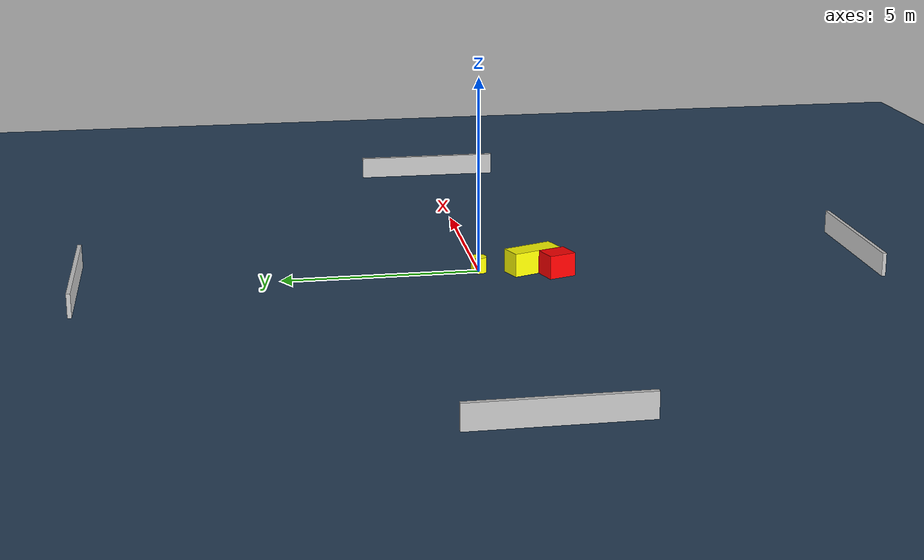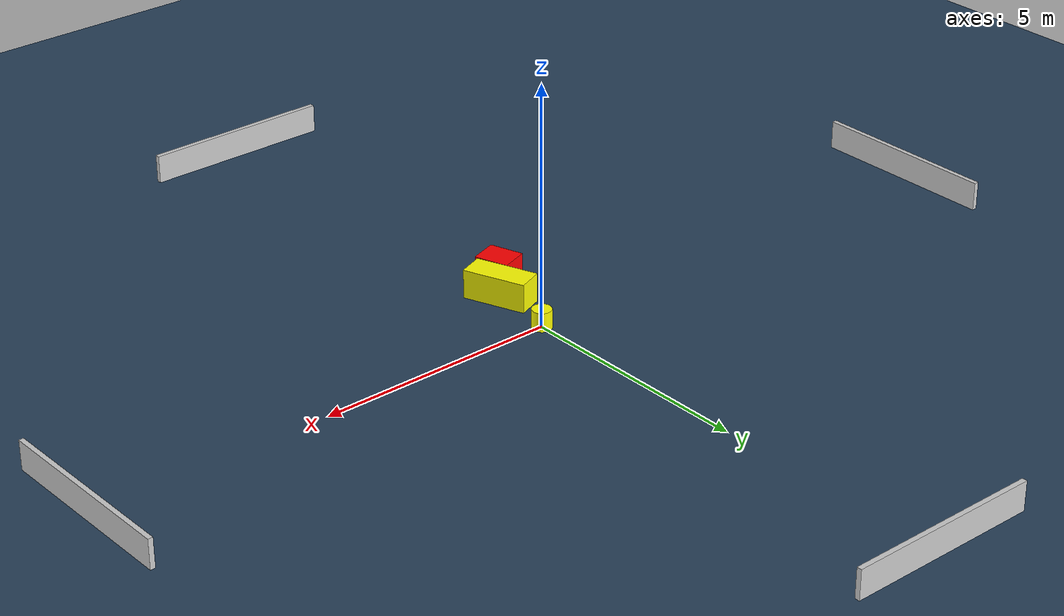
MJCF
<?xml version="1.0" ?>
<mujoco model="generated_environment">
  <option timestep="0.01" integrator="RK4" cone="elliptic"/>
  <default>
    <geom density="1"/>
  </default>
  <asset>
    <texture builtin="gradient" height="3072" name="skybox" rgb1="0.3 0.5 0.7" rgb2="0 0 0" type="skybox" width="512"/>
    <texture builtin="checker" height="300" name="groundplane" rgb1="0.2 0.3 0.4" rgb2="0.1 0.2 0.3" type="2d" width="300"/>
    <material name="groundplane" reflectance="0.2" texrepeat="5 5" texture="groundplane"/>
  </asset>
  <worldbody>
    <light dir="0 0 -1" directional="true" pos="0 0 1.5"/>
    <geom condim="3" friction="0.5 0.005 0.001" material="groundplane" name="floor" pos="0 0 0" size="0 0 0.05" type="plane"/>
    <body name="walls">
      <geom name="wall_1" condim="4" pos="-10.0 0.0 0.3" rgba="0.800000011920929 0.800000011920929 0.800000011920929 1.0" size="0.05 2.0 0.3" type="box"/>
      <geom name="wall_2" condim="4" pos="10.0 0.0 0.3" rgba="0.800000011920929 0.800000011920929 0.800000011920929 1.0" size="0.05 2.0 0.3" type="box"/>
      <geom name="wall_3" condim="4" pos="0.0 -10.0 0.3" rgba="0.800000011920929 0.800000011920929 0.800000011920929 1.0" size="2.0 0.05 0.3" type="box"/>
      <geom name="wall_4" condim="4" pos="0.0 10.0 0.3" rgba="0.800000011920929 0.800000011920929 0.800000011920929 1.0" size="2.0 0.05 0.3" type="box"/>
    </body>
    <body name="robot">
      <joint name="joint_x" type="slide" pos="0 0 0" axis="1 0 0"/>
      <joint name="joint_y" type="slide" pos="0 0 0" axis="0 1 0"/>
      <geom name="robot" type="cylinder" pos="0.0 0.0 0.2" size="0.2 0.2 0.0" mass="5.0" friction="1.0 0.005 0.0001" condim="4" rgba="1.0 1.0 0.0 1.0"/>
    </body>
    <body name="obstacle_1_movable">
      <geom name="obstacle_1_movable" condim="4" pos="-0.11968698978058034 -1.359833961076461 0.3" euler="0 0 21.04017105860519" friction="0.0 0.005 0.001" rgba="1.0 1.0 0.0 1.0" size="0.277741641162749 0.6585534223352878 0.3" type="box" mass="0.1"/>
      <joint type="free"/>
    </body>
    <body name="obstacle_2_static">
      <geom name="obstacle_2_static" condim="4" pos="-0.5418196014601416 -1.9113425363377503 0.3" euler="0 0 198.47960502649318" friction="0.0 0.005 0.001" rgba="1.0 0.0 0.0 1.0" size="0.29574840241435735 0.35866945007042367 0.3" type="box"/>
    </body>
  </worldbody>
  <actuator>
    <motor name="actuator_x" joint="joint_x" gear="1" ctrlrange="-1 1"/>
    <motor name="actuator_y" joint="joint_y" gear="1" ctrlrange="-1 1"/>
  </actuator>
</mujoco>
